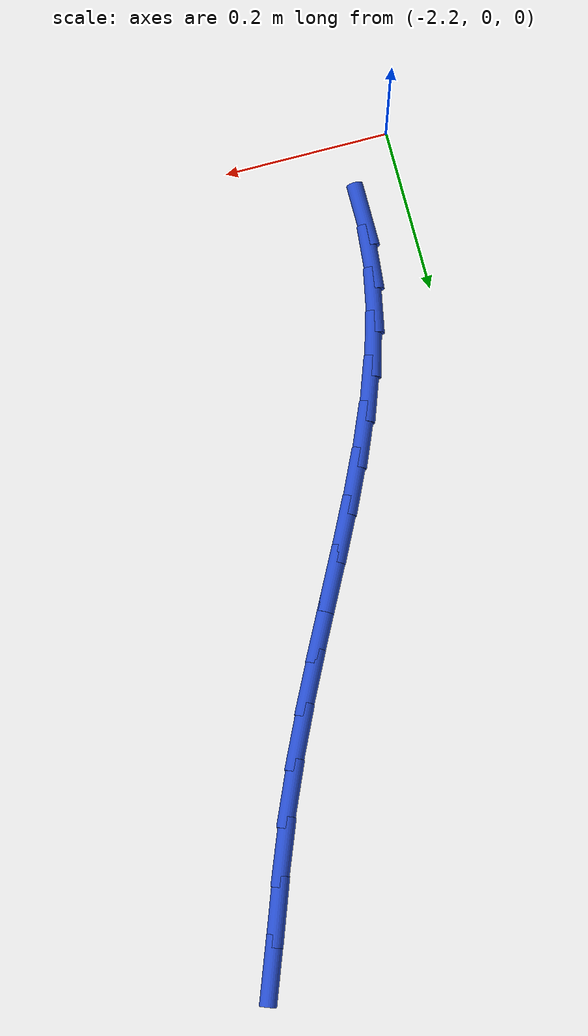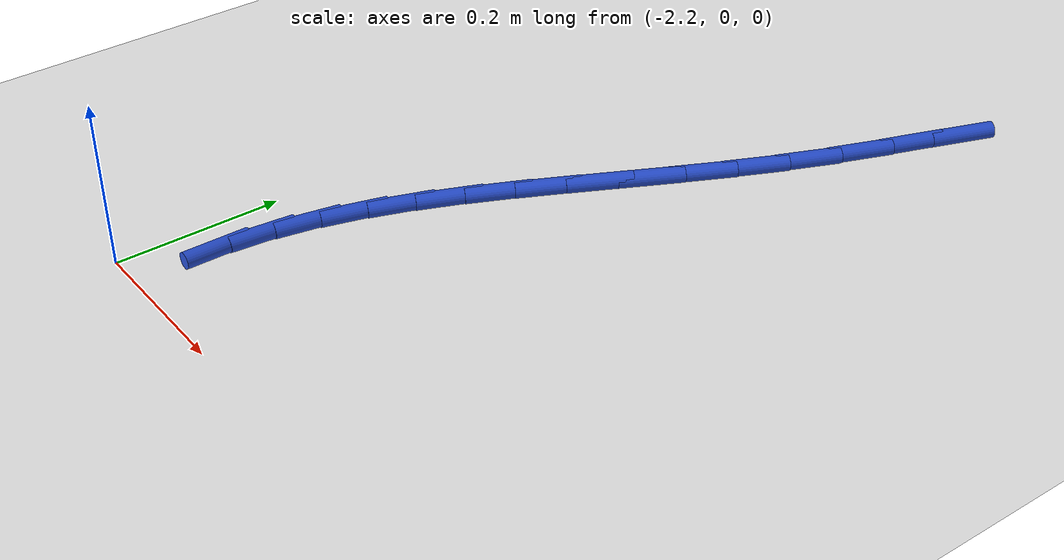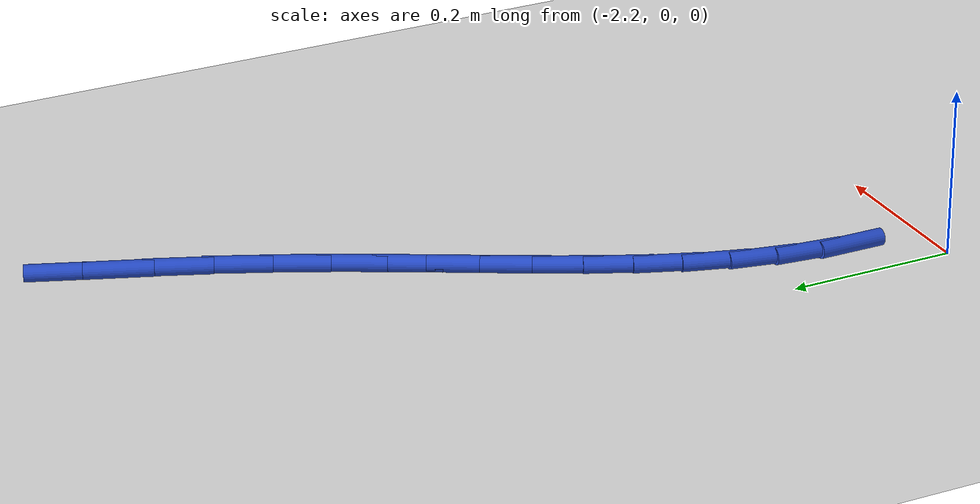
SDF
<sdf version="1.6">
 <world name="default">
  <model name="ground_plane">
   <static>1</static>
   <link name="link">
    <collision name="collision">
     <geometry><plane><normal>0 0 1</normal><size>100 100</size></plane></geometry>
     <surface><friction><ode><mu>100</mu><mu2>50</mu2></ode></friction></surface>
    </collision>
    <visual name="visual">
     <cast_shadows>0</cast_shadows>
     <geometry><plane><normal>0 0 1</normal><size>100 100</size></plane></geometry>
     <material>
      <script><uri>file://media/materials/scripts/gazebo.material</uri><name>Gazebo/WhiteGlow</name></script>
     </material>
    </visual>
   </link>
  </model>
  <model name="line">
   <link name="link_45">
    <pose>-1.8150114232914385 0.9239100112583081 0.01 0 1.57 1.2097706441155942</pose>
    <collision name="collision">
     <geometry><cylinder><radius>0.01</radius><length>0.08</length></cylinder></geometry>
    </collision>
    <visual name="visual">
     <material>
      <script><name>Gazebo/Blue</name><uri>file://media/materials/scripts/gazebo.material</uri></script>
     </material>
     <geometry><cylinder><radius>0.01</radius><length>0.08</length></cylinder></geometry>
    </visual>
   </link>
   <link name="link_46">
    <pose>-1.838140922583922 0.8626518721360175 0.01 0 1.57 1.2159317273241743</pose>
    <collision name="collision">
     <geometry><cylinder><radius>0.01</radius><length>0.08</length></cylinder></geometry>
    </collision>
    <visual name="visual">
     <material>
      <script><name>Gazebo/Blue</name><uri>file://media/materials/scripts/gazebo.material</uri></script>
     </material>
     <geometry><cylinder><radius>0.01</radius><length>0.08</length></cylinder></geometry>
    </visual>
   </link>
   <link name="link_47">
    <pose>-1.8613152959985622 0.8001115870970231 0.01 0 1.57 1.1922117983486855</pose>
    <collision name="collision">
     <geometry><cylinder><radius>0.01</radius><length>0.08</length></cylinder></geometry>
    </collision>
    <visual name="visual">
     <material>
      <script><name>Gazebo/Blue</name><uri>file://media/materials/scripts/gazebo.material</uri></script>
     </material>
     <geometry><cylinder><radius>0.01</radius><length>0.08</length></cylinder></geometry>
    </visual>
   </link>
   <link name="link_48">
    <pose>-1.8858021082982872 0.7385517241267248 0.01 0 1.57 1.153136931257311</pose>
    <collision name="collision">
     <geometry><cylinder><radius>0.01</radius><length>0.08</length></cylinder></geometry>
    </collision>
    <visual name="visual">
     <material>
      <script><name>Gazebo/Blue</name><uri>file://media/materials/scripts/gazebo.material</uri></script>
     </material>
     <geometry><cylinder><radius>0.01</radius><length>0.08</length></cylinder></geometry>
    </visual>
   </link>
   <link name="link_49">
    <pose>-1.9121250601189768 0.6792348139699766 0.01 0 1.57 1.1216217138618414</pose>
    <collision name="collision">
     <geometry><cylinder><radius>0.01</radius><length>0.08</length></cylinder></geometry>
    </collision>
    <visual name="visual">
     <material>
      <script><name>Gazebo/Blue</name><uri>file://media/materials/scripts/gazebo.material</uri></script>
     </material>
     <geometry><cylinder><radius>0.01</radius><length>0.08</length></cylinder></geometry>
    </visual>
   </link>
   <link name="link_50">
    <pose>-1.9397280302003248 0.6219716946900296 0.01 0 1.57 1.1001728151836974</pose>
    <collision name="collision">
     <geometry><cylinder><radius>0.01</radius><length>0.08</length></cylinder></geometry>
    </collision>
    <visual name="visual">
     <material>
      <script><name>Gazebo/Blue</name><uri>file://media/materials/scripts/gazebo.material</uri></script>
     </material>
     <geometry><cylinder><radius>0.01</radius><length>0.08</length></cylinder></geometry>
    </visual>
   </link>
   <link name="link_51">
    <pose>-1.9679700641807085 0.566459156290197 0.01 0 1.57 1.0894405811305685</pose>
    <collision name="collision">
     <geometry><cylinder><radius>0.01</radius><length>0.08</length></cylinder></geometry>
    </collision>
    <visual name="visual">
     <material>
      <script><name>Gazebo/Blue</name><uri>file://media/materials/scripts/gazebo.material</uri></script>
     </material>
     <geometry><cylinder><radius>0.01</radius><length>0.08</length></cylinder></geometry>
    </visual>
   </link>
   <link name="link_52">
    <pose>-1.9962102076985055 0.5123939887737913 0.01 0 1.57 1.0901119783977222</pose>
    <collision name="collision">
     <geometry><cylinder><radius>0.01</radius><length>0.08</length></cylinder></geometry>
    </collision>
    <visual name="visual">
     <material>
      <script><name>Gazebo/Blue</name><uri>file://media/materials/scripts/gazebo.material</uri></script>
     </material>
     <geometry><cylinder><radius>0.01</radius><length>0.08</length></cylinder></geometry>
    </visual>
   </link>
   <link name="link_53">
    <pose>-2.023807506392091 0.4594729821441259 0.01 0 1.57 1.102956758454377</pose>
    <collision name="collision">
     <geometry><cylinder><radius>0.01</radius><length>0.08</length></cylinder></geometry>
    </collision>
    <visual name="visual">
     <material>
      <script><name>Gazebo/Blue</name><uri>file://media/materials/scripts/gazebo.material</uri></script>
     </material>
     <geometry><cylinder><radius>0.01</radius><length>0.08</length></cylinder></geometry>
    </visual>
   </link>
   <link name="link_54">
    <pose>-2.050121005899843 0.40739292640451297 0.01 0 1.57 1.128834732471989</pose>
    <collision name="collision">
     <geometry><cylinder><radius>0.01</radius><length>0.08</length></cylinder></geometry>
    </collision>
    <visual name="visual">
     <material>
      <script><name>Gazebo/Blue</name><uri>file://media/materials/scripts/gazebo.material</uri></script>
     </material>
     <geometry><cylinder><radius>0.01</radius><length>0.08</length></cylinder></geometry>
    </visual>
   </link>
   <link name="link_55">
    <pose>-2.0745097518601376 0.35585061155826614 0.01 0 1.57 1.1686412762542278</pose>
    <collision name="collision">
     <geometry><cylinder><radius>0.01</radius><length>0.08</length></cylinder></geometry>
    </collision>
    <visual name="visual">
     <material>
      <script><name>Gazebo/Blue</name><uri>file://media/materials/scripts/gazebo.material</uri></script>
     </material>
     <geometry><cylinder><radius>0.01</radius><length>0.08</length></cylinder></geometry>
    </visual>
   </link>
   <link name="link_56">
    <pose>-2.096332789911352 0.30454282760869755 0.01 0 1.57 1.223159955506882</pose>
    <collision name="collision">
     <geometry><cylinder><radius>0.01</radius><length>0.08</length></cylinder></geometry>
    </collision>
    <visual name="visual">
     <material>
      <script><name>Gazebo/Blue</name><uri>file://media/materials/scripts/gazebo.material</uri></script>
     </material>
     <geometry><cylinder><radius>0.01</radius><length>0.08</length></cylinder></geometry>
    </visual>
   </link>
   <link name="link_57">
    <pose>-2.1149491656918644 0.25316636455912084 0.01 0 1.57 1.2927911989933922</pose>
    <collision name="collision">
     <geometry><cylinder><radius>0.01</radius><length>0.08</length></cylinder></geometry>
    </collision>
    <visual name="visual">
     <material>
      <script><name>Gazebo/Blue</name><uri>file://media/materials/scripts/gazebo.material</uri></script>
     </material>
     <geometry><cylinder><radius>0.01</radius><length>0.08</length></cylinder></geometry>
    </visual>
   </link>
   <link name="link_58">
    <pose>-2.1297179248400497 0.20141801241284807 0.01 0 1.57 1.3771544940343179</pose>
    <collision name="collision">
     <geometry><cylinder><radius>0.01</radius><length>0.08</length></cylinder></geometry>
    </collision>
    <visual name="visual">
     <material>
      <script><name>Gazebo/Blue</name><uri>file://media/materials/scripts/gazebo.material</uri></script>
     </material>
     <geometry><cylinder><radius>0.01</radius><length>0.08</length></cylinder></geometry>
    </visual>
   </link>
   <link name="link_59">
    <pose>-2.1399981129942853 0.14899456117319293 0.01 0 1.57 1.4736718342020092</pose>
    <collision name="collision">
     <geometry><cylinder><radius>0.01</radius><length>0.08</length></cylinder></geometry>
    </collision>
    <visual name="visual">
     <material>
      <script><name>Gazebo/Blue</name><uri>file://media/materials/scripts/gazebo.material</uri></script>
     </material>
     <geometry><cylinder><radius>0.01</radius><length>0.08</length></cylinder></geometry>
    </visual>
   </link>
   <link name="link_60">
    <pose>-2.1451992571846894 0.09561173942430788 0.01 0 1.57 1.567615122730043</pose>
    <collision name="collision">
     <geometry><cylinder><radius>0.01</radius><length>0.08</length></cylinder></geometry>
    </collision>
    <visual name="visual">
     <material>
      <script><name>Gazebo/Blue</name><uri>file://media/materials/scripts/gazebo.material</uri></script>
     </material>
     <geometry><cylinder><radius>0.01</radius><length>0.08</length></cylinder></geometry>
    </visual>
   </link>
  </model>
 </world>
</sdf>
